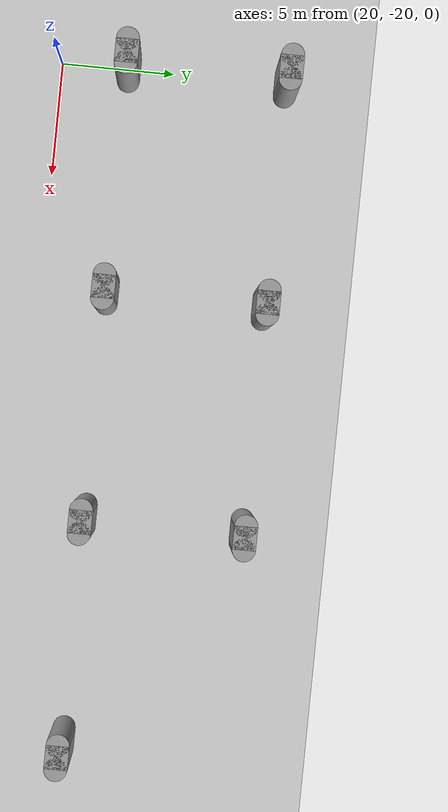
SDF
<sdf version="1.6">
 <world name="default">
  <model name="ground_plane">
   <static>1</static>
   <link name="link">
    <collision name="collision">
     <geometry><plane><normal>0 0 1</normal><size>100 100</size></plane></geometry>
     <surface><friction><ode><mu>100</mu><mu2>50</mu2></ode></friction></surface>
    </collision>
    <visual name="visual">
     <cast_shadows>0</cast_shadows>
     <geometry><plane><normal>0 0 1</normal><size>100 100</size></plane></geometry>
     <material>
      <script><uri>file://media/materials/scripts/gazebo.material</uri><name>Gazebo/Grey</name></script>
     </material>
    </visual>
   </link>
  </model>
  <model name="pillar_clone_2">
   <link name="link_0">
    <inertial>
     <mass>1</mass>
     <inertia>
      <ixx>0.166667</ixx>
      <ixy>0</ixy>
      <ixz>0</ixz>
      <iyy>0.166667</iyy>
      <iyz>0</iyz>
      <izz>0.166667</izz>
     </inertia>
    </inertial>
    <kinematic>1</kinematic>
    <visual name="visual">
     <geometry><box><size>1 1 4</size></box></geometry>
     <material>
      <lighting>1</lighting>
      <script><uri>file://media/materials/scripts/gazebo.material</uri><name>Gazebo/Grey</name></script>
      <shader type="pixel"><normal_map>__default__</normal_map></shader>
      <ambient>0.3 0.3 0.3 1</ambient>
      <diffuse>0.7 0.7 0.7 1</diffuse>
      <specular>0.01 0.01 0.01 1</specular>
      <emissive>0 0 0 1</emissive>
     </material>
    </visual>
    <collision name="collision">
     <geometry><box><size>1 1 4</size></box></geometry>
     <surface>
      <friction>
       <ode><mu>1</mu><mu2>1</mu2><fdir1>0 0 0</fdir1><slip1>0</slip1><slip2>0</slip2></ode>
       <torsional>
        <coefficient>1</coefficient>
        <patch_radius>0</patch_radius>
        <surface_radius>0</surface_radius>
        <use_patch_radius>1</use_patch_radius>
        <ode><slip>0</slip></ode>
       </torsional>
      </friction>
      <bounce><restitution_coefficient>0</restitution_coefficient><threshold>1e+06</threshold></bounce>
      <contact>
       <collide_without_contact>0</collide_without_contact>
       <collide_without_contact_bitmask>1</collide_without_contact_bitmask>
       <collide_bitmask>1</collide_bitmask>
       <ode>
        <soft_cfm>0</soft_cfm>
        <soft_erp>0.2</soft_erp>
        <kp>1e+13</kp>
        <kd>1</kd>
        <max_vel>0.01</max_vel>
        <min_depth>0</min_depth>
       </ode>
       <bullet>
        <split_impulse>1</split_impulse>
        <split_impulse_penetration_threshold>-0.01</split_impulse_penetration_threshold>
        <soft_cfm>0</soft_cfm>
        <soft_erp>0.2</soft_erp>
        <kp>1e+13</kp>
        <kd>1</kd>
       </bullet>
      </contact>
     </surface>
    </collision>
   </link>
   <link name="link_1">
    <inertial>
     <mass>1</mass>
     <inertia><ixx>0.145833</ixx><ixy>0</ixy><ixz>0</ixz><iyy>0.145833</iyy><iyz>0</iyz><izz>0.125</izz></inertia>
    </inertial>
    <pose>-0.5 0 0 0 -0 0</pose>
    <kinematic>1</kinematic>
    <visual name="visual">
     <geometry><cylinder><radius>0.5</radius><length>4</length></cylinder></geometry>
     <material>
      <lighting>1</lighting>
      <script><uri>file://media/materials/scripts/gazebo.material</uri><name>Gazebo/Grey</name></script>
      <shader type="pixel"><normal_map>__default__</normal_map></shader>
      <ambient>0.3 0.3 0.3 1</ambient>
      <diffuse>0.7 0.7 0.7 1</diffuse>
      <specular>0.01 0.01 0.01 1</specular>
      <emissive>0 0 0 1</emissive>
     </material>
    </visual>
    <collision name="collision">
     <geometry><cylinder><radius>0.5</radius><length>4</length></cylinder></geometry>
     <surface>
      <friction>
       <ode><mu>1</mu><mu2>1</mu2><fdir1>0 0 0</fdir1><slip1>0</slip1><slip2>0</slip2></ode>
       <torsional>
        <coefficient>1</coefficient>
        <patch_radius>0</patch_radius>
        <surface_radius>0</surface_radius>
        <use_patch_radius>1</use_patch_radius>
        <ode><slip>0</slip></ode>
       </torsional>
      </friction>
      <bounce><restitution_coefficient>0</restitution_coefficient><threshold>1e+06</threshold></bounce>
      <contact>
       <collide_without_contact>0</collide_without_contact>
       <collide_without_contact_bitmask>1</collide_without_contact_bitmask>
       <collide_bitmask>1</collide_bitmask>
       <ode>
        <soft_cfm>0</soft_cfm>
        <soft_erp>0.2</soft_erp>
        <kp>1e+13</kp>
        <kd>1</kd>
        <max_vel>0.01</max_vel>
        <min_depth>0</min_depth>
       </ode>
       <bullet>
        <split_impulse>1</split_impulse>
        <split_impulse_penetration_threshold>-0.01</split_impulse_penetration_threshold>
        <soft_cfm>0</soft_cfm>
        <soft_erp>0.2</soft_erp>
        <kp>1e+13</kp>
        <kd>1</kd>
       </bullet>
      </contact>
     </surface>
    </collision>
   </link>
   <link name="link_2">
    <inertial>
     <mass>1</mass>
     <inertia><ixx>0.145833</ixx><ixy>0</ixy><ixz>0</ixz><iyy>0.145833</iyy><iyz>0</iyz><izz>0.125</izz></inertia>
    </inertial>
    <pose>0.5 0 0 0 -0 0</pose>
    <kinematic>1</kinematic>
    <visual name="visual">
     <geometry><cylinder><radius>0.5</radius><length>4</length></cylinder></geometry>
     <material>
      <lighting>1</lighting>
      <script><uri>file://media/materials/scripts/gazebo.material</uri><name>Gazebo/Grey</name></script>
      <shader type="pixel"><normal_map>__default__</normal_map></shader>
      <ambient>0.3 0.3 0.3 1</ambient>
      <diffuse>0.7 0.7 0.7 1</diffuse>
      <specular>0.01 0.01 0.01 1</specular>
      <emissive>0 0 0 1</emissive>
     </material>
    </visual>
    <collision name="collision">
     <geometry><cylinder><radius>0.5</radius><length>4</length></cylinder></geometry>
     <surface>
      <friction>
       <ode><mu>1</mu><mu2>1</mu2><fdir1>0 0 0</fdir1><slip1>0</slip1><slip2>0</slip2></ode>
       <torsional>
        <coefficient>1</coefficient>
        <patch_radius>0</patch_radius>
        <surface_radius>0</surface_radius>
        <use_patch_radius>1</use_patch_radius>
        <ode><slip>0</slip></ode>
       </torsional>
      </friction>
      <bounce><restitution_coefficient>0</restitution_coefficient><threshold>1e+06</threshold></bounce>
      <contact>
       <collide_without_contact>0</collide_without_contact>
       <collide_without_contact_bitmask>1</collide_without_contact_bitmask>
       <collide_bitmask>1</collide_bitmask>
       <ode>
        <soft_cfm>0</soft_cfm>
        <soft_erp>0.2</soft_erp>
        <kp>1e+13</kp>
        <kd>1</kd>
        <max_vel>0.01</max_vel>
        <min_depth>0</min_depth>
       </ode>
       <bullet>
        <split_impulse>1</split_impulse>
        <split_impulse_penetration_threshold>-0.01</split_impulse_penetration_threshold>
        <soft_cfm>0</soft_cfm>
        <soft_erp>0.2</soft_erp>
        <kp>1e+13</kp>
        <kd>1</kd>
       </bullet>
      </contact>
     </surface>
    </collision>
   </link>
   <static>1</static>
   <pose>20 -17 2 0 -0 0</pose>
  </model>
  <model name="pillar_clone_3">
   <link name="link_0">
    <inertial>
     <mass>1</mass>
     <inertia>
      <ixx>0.166667</ixx>
      <ixy>0</ixy>
      <ixz>0</ixz>
      <iyy>0.166667</iyy>
      <iyz>0</iyz>
      <izz>0.166667</izz>
     </inertia>
    </inertial>
    <kinematic>1</kinematic>
    <visual name="visual">
     <geometry><box><size>1 1 4</size></box></geometry>
     <material>
      <lighting>1</lighting>
      <script><uri>file://media/materials/scripts/gazebo.material</uri><name>Gazebo/Grey</name></script>
      <shader type="pixel"><normal_map>__default__</normal_map></shader>
      <ambient>0.3 0.3 0.3 1</ambient>
      <diffuse>0.7 0.7 0.7 1</diffuse>
      <specular>0.01 0.01 0.01 1</specular>
      <emissive>0 0 0 1</emissive>
     </material>
    </visual>
    <collision name="collision">
     <geometry><box><size>1 1 4</size></box></geometry>
     <surface>
      <friction>
       <ode><mu>1</mu><mu2>1</mu2><fdir1>0 0 0</fdir1><slip1>0</slip1><slip2>0</slip2></ode>
       <torsional>
        <coefficient>1</coefficient>
        <patch_radius>0</patch_radius>
        <surface_radius>0</surface_radius>
        <use_patch_radius>1</use_patch_radius>
        <ode><slip>0</slip></ode>
       </torsional>
      </friction>
      <bounce><restitution_coefficient>0</restitution_coefficient><threshold>1e+06</threshold></bounce>
      <contact>
       <collide_without_contact>0</collide_without_contact>
       <collide_without_contact_bitmask>1</collide_without_contact_bitmask>
       <collide_bitmask>1</collide_bitmask>
       <ode>
        <soft_cfm>0</soft_cfm>
        <soft_erp>0.2</soft_erp>
        <kp>1e+13</kp>
        <kd>1</kd>
        <max_vel>0.01</max_vel>
        <min_depth>0</min_depth>
       </ode>
       <bullet>
        <split_impulse>1</split_impulse>
        <split_impulse_penetration_threshold>-0.01</split_impulse_penetration_threshold>
        <soft_cfm>0</soft_cfm>
        <soft_erp>0.2</soft_erp>
        <kp>1e+13</kp>
        <kd>1</kd>
       </bullet>
      </contact>
     </surface>
    </collision>
   </link>
   <link name="link_1">
    <inertial>
     <mass>1</mass>
     <inertia><ixx>0.145833</ixx><ixy>0</ixy><ixz>0</ixz><iyy>0.145833</iyy><iyz>0</iyz><izz>0.125</izz></inertia>
    </inertial>
    <pose>-0.5 0 0 0 -0 0</pose>
    <kinematic>1</kinematic>
    <visual name="visual">
     <geometry><cylinder><radius>0.5</radius><length>4</length></cylinder></geometry>
     <material>
      <lighting>1</lighting>
      <script><uri>file://media/materials/scripts/gazebo.material</uri><name>Gazebo/Grey</name></script>
      <shader type="pixel"><normal_map>__default__</normal_map></shader>
      <ambient>0.3 0.3 0.3 1</ambient>
      <diffuse>0.7 0.7 0.7 1</diffuse>
      <specular>0.01 0.01 0.01 1</specular>
      <emissive>0 0 0 1</emissive>
     </material>
    </visual>
    <collision name="collision">
     <geometry><cylinder><radius>0.5</radius><length>4</length></cylinder></geometry>
     <surface>
      <friction>
       <ode><mu>1</mu><mu2>1</mu2><fdir1>0 0 0</fdir1><slip1>0</slip1><slip2>0</slip2></ode>
       <torsional>
        <coefficient>1</coefficient>
        <patch_radius>0</patch_radius>
        <surface_radius>0</surface_radius>
        <use_patch_radius>1</use_patch_radius>
        <ode><slip>0</slip></ode>
       </torsional>
      </friction>
      <bounce><restitution_coefficient>0</restitution_coefficient><threshold>1e+06</threshold></bounce>
      <contact>
       <collide_without_contact>0</collide_without_contact>
       <collide_without_contact_bitmask>1</collide_without_contact_bitmask>
       <collide_bitmask>1</collide_bitmask>
       <ode>
        <soft_cfm>0</soft_cfm>
        <soft_erp>0.2</soft_erp>
        <kp>1e+13</kp>
        <kd>1</kd>
        <max_vel>0.01</max_vel>
        <min_depth>0</min_depth>
       </ode>
       <bullet>
        <split_impulse>1</split_impulse>
        <split_impulse_penetration_threshold>-0.01</split_impulse_penetration_threshold>
        <soft_cfm>0</soft_cfm>
        <soft_erp>0.2</soft_erp>
        <kp>1e+13</kp>
        <kd>1</kd>
       </bullet>
      </contact>
     </surface>
    </collision>
   </link>
   <link name="link_2">
    <inertial>
     <mass>1</mass>
     <inertia><ixx>0.145833</ixx><ixy>0</ixy><ixz>0</ixz><iyy>0.145833</iyy><iyz>0</iyz><izz>0.125</izz></inertia>
    </inertial>
    <pose>0.5 0 0 0 -0 0</pose>
    <kinematic>1</kinematic>
    <visual name="visual">
     <geometry><cylinder><radius>0.5</radius><length>4</length></cylinder></geometry>
     <material>
      <lighting>1</lighting>
      <script><uri>file://media/materials/scripts/gazebo.material</uri><name>Gazebo/Grey</name></script>
      <shader type="pixel"><normal_map>__default__</normal_map></shader>
      <ambient>0.3 0.3 0.3 1</ambient>
      <diffuse>0.7 0.7 0.7 1</diffuse>
      <specular>0.01 0.01 0.01 1</specular>
      <emissive>0 0 0 1</emissive>
     </material>
    </visual>
    <collision name="collision">
     <geometry><cylinder><radius>0.5</radius><length>4</length></cylinder></geometry>
     <surface>
      <friction>
       <ode><mu>1</mu><mu2>1</mu2><fdir1>0 0 0</fdir1><slip1>0</slip1><slip2>0</slip2></ode>
       <torsional>
        <coefficient>1</coefficient>
        <patch_radius>0</patch_radius>
        <surface_radius>0</surface_radius>
        <use_patch_radius>1</use_patch_radius>
        <ode><slip>0</slip></ode>
       </torsional>
      </friction>
      <bounce><restitution_coefficient>0</restitution_coefficient><threshold>1e+06</threshold></bounce>
      <contact>
       <collide_without_contact>0</collide_without_contact>
       <collide_without_contact_bitmask>1</collide_without_contact_bitmask>
       <collide_bitmask>1</collide_bitmask>
       <ode>
        <soft_cfm>0</soft_cfm>
        <soft_erp>0.2</soft_erp>
        <kp>1e+13</kp>
        <kd>1</kd>
        <max_vel>0.01</max_vel>
        <min_depth>0</min_depth>
       </ode>
       <bullet>
        <split_impulse>1</split_impulse>
        <split_impulse_penetration_threshold>-0.01</split_impulse_penetration_threshold>
        <soft_cfm>0</soft_cfm>
        <soft_erp>0.2</soft_erp>
        <kp>1e+13</kp>
        <kd>1</kd>
       </bullet>
      </contact>
     </surface>
    </collision>
   </link>
   <static>1</static>
   <pose>30 -17 2 0 -0 0</pose>
  </model>
  <model name="pillar_clone_4">
   <link name="link_0">
    <inertial>
     <mass>1</mass>
     <inertia>
      <ixx>0.166667</ixx>
      <ixy>0</ixy>
      <ixz>0</ixz>
      <iyy>0.166667</iyy>
      <iyz>0</iyz>
      <izz>0.166667</izz>
     </inertia>
    </inertial>
    <kinematic>1</kinematic>
    <visual name="visual">
     <geometry><box><size>1 1 4</size></box></geometry>
     <material>
      <lighting>1</lighting>
      <script><uri>file://media/materials/scripts/gazebo.material</uri><name>Gazebo/Grey</name></script>
      <shader type="pixel"><normal_map>__default__</normal_map></shader>
      <ambient>0.3 0.3 0.3 1</ambient>
      <diffuse>0.7 0.7 0.7 1</diffuse>
      <specular>0.01 0.01 0.01 1</specular>
      <emissive>0 0 0 1</emissive>
     </material>
    </visual>
    <collision name="collision">
     <geometry><box><size>1 1 4</size></box></geometry>
     <surface>
      <friction>
       <ode><mu>1</mu><mu2>1</mu2><fdir1>0 0 0</fdir1><slip1>0</slip1><slip2>0</slip2></ode>
       <torsional>
        <coefficient>1</coefficient>
        <patch_radius>0</patch_radius>
        <surface_radius>0</surface_radius>
        <use_patch_radius>1</use_patch_radius>
        <ode><slip>0</slip></ode>
       </torsional>
      </friction>
      <bounce><restitution_coefficient>0</restitution_coefficient><threshold>1e+06</threshold></bounce>
      <contact>
       <collide_without_contact>0</collide_without_contact>
       <collide_without_contact_bitmask>1</collide_without_contact_bitmask>
       <collide_bitmask>1</collide_bitmask>
       <ode>
        <soft_cfm>0</soft_cfm>
        <soft_erp>0.2</soft_erp>
        <kp>1e+13</kp>
        <kd>1</kd>
        <max_vel>0.01</max_vel>
        <min_depth>0</min_depth>
       </ode>
       <bullet>
        <split_impulse>1</split_impulse>
        <split_impulse_penetration_threshold>-0.01</split_impulse_penetration_threshold>
        <soft_cfm>0</soft_cfm>
        <soft_erp>0.2</soft_erp>
        <kp>1e+13</kp>
        <kd>1</kd>
       </bullet>
      </contact>
     </surface>
    </collision>
   </link>
   <link name="link_1">
    <inertial>
     <mass>1</mass>
     <inertia><ixx>0.145833</ixx><ixy>0</ixy><ixz>0</ixz><iyy>0.145833</iyy><iyz>0</iyz><izz>0.125</izz></inertia>
    </inertial>
    <pose>-0.5 0 0 0 -0 0</pose>
    <kinematic>1</kinematic>
    <visual name="visual">
     <geometry><cylinder><radius>0.5</radius><length>4</length></cylinder></geometry>
     <material>
      <lighting>1</lighting>
      <script><uri>file://media/materials/scripts/gazebo.material</uri><name>Gazebo/Grey</name></script>
      <shader type="pixel"><normal_map>__default__</normal_map></shader>
      <ambient>0.3 0.3 0.3 1</ambient>
      <diffuse>0.7 0.7 0.7 1</diffuse>
      <specular>0.01 0.01 0.01 1</specular>
      <emissive>0 0 0 1</emissive>
     </material>
    </visual>
    <collision name="collision">
     <geometry><cylinder><radius>0.5</radius><length>4</length></cylinder></geometry>
     <surface>
      <friction>
       <ode><mu>1</mu><mu2>1</mu2><fdir1>0 0 0</fdir1><slip1>0</slip1><slip2>0</slip2></ode>
       <torsional>
        <coefficient>1</coefficient>
        <patch_radius>0</patch_radius>
        <surface_radius>0</surface_radius>
        <use_patch_radius>1</use_patch_radius>
        <ode><slip>0</slip></ode>
       </torsional>
      </friction>
      <bounce><restitution_coefficient>0</restitution_coefficient><threshold>1e+06</threshold></bounce>
      <contact>
       <collide_without_contact>0</collide_without_contact>
       <collide_without_contact_bitmask>1</collide_without_contact_bitmask>
       <collide_bitmask>1</collide_bitmask>
       <ode>
        <soft_cfm>0</soft_cfm>
        <soft_erp>0.2</soft_erp>
        <kp>1e+13</kp>
        <kd>1</kd>
        <max_vel>0.01</max_vel>
        <min_depth>0</min_depth>
       </ode>
       <bullet>
        <split_impulse>1</split_impulse>
        <split_impulse_penetration_threshold>-0.01</split_impulse_penetration_threshold>
        <soft_cfm>0</soft_cfm>
        <soft_erp>0.2</soft_erp>
        <kp>1e+13</kp>
        <kd>1</kd>
       </bullet>
      </contact>
     </surface>
    </collision>
   </link>
   <link name="link_2">
    <inertial>
     <mass>1</mass>
     <inertia><ixx>0.145833</ixx><ixy>0</ixy><ixz>0</ixz><iyy>0.145833</iyy><iyz>0</iyz><izz>0.125</izz></inertia>
    </inertial>
    <pose>0.5 0 0 0 -0 0</pose>
    <kinematic>1</kinematic>
    <visual name="visual">
     <geometry><cylinder><radius>0.5</radius><length>4</length></cylinder></geometry>
     <material>
      <lighting>1</lighting>
      <script><uri>file://media/materials/scripts/gazebo.material</uri><name>Gazebo/Grey</name></script>
      <shader type="pixel"><normal_map>__default__</normal_map></shader>
      <ambient>0.3 0.3 0.3 1</ambient>
      <diffuse>0.7 0.7 0.7 1</diffuse>
      <specular>0.01 0.01 0.01 1</specular>
      <emissive>0 0 0 1</emissive>
     </material>
    </visual>
    <collision name="collision">
     <geometry><cylinder><radius>0.5</radius><length>4</length></cylinder></geometry>
     <surface>
      <friction>
       <ode><mu>1</mu><mu2>1</mu2><fdir1>0 0 0</fdir1><slip1>0</slip1><slip2>0</slip2></ode>
       <torsional>
        <coefficient>1</coefficient>
        <patch_radius>0</patch_radius>
        <surface_radius>0</surface_radius>
        <use_patch_radius>1</use_patch_radius>
        <ode><slip>0</slip></ode>
       </torsional>
      </friction>
      <bounce><restitution_coefficient>0</restitution_coefficient><threshold>1e+06</threshold></bounce>
      <contact>
       <collide_without_contact>0</collide_without_contact>
       <collide_without_contact_bitmask>1</collide_without_contact_bitmask>
       <collide_bitmask>1</collide_bitmask>
       <ode>
        <soft_cfm>0</soft_cfm>
        <soft_erp>0.2</soft_erp>
        <kp>1e+13</kp>
        <kd>1</kd>
        <max_vel>0.01</max_vel>
        <min_depth>0</min_depth>
       </ode>
       <bullet>
        <split_impulse>1</split_impulse>
        <split_impulse_penetration_threshold>-0.01</split_impulse_penetration_threshold>
        <soft_cfm>0</soft_cfm>
        <soft_erp>0.2</soft_erp>
        <kp>1e+13</kp>
        <kd>1</kd>
       </bullet>
      </contact>
     </surface>
    </collision>
   </link>
   <static>1</static>
   <pose>40 -17 2 0 -0 0</pose>
  </model>
  <model name="pillar_clone_5">
   <link name="link_0">
    <inertial>
     <mass>1</mass>
     <inertia>
      <ixx>0.166667</ixx>
      <ixy>0</ixy>
      <ixz>0</ixz>
      <iyy>0.166667</iyy>
      <iyz>0</iyz>
      <izz>0.166667</izz>
     </inertia>
    </inertial>
    <kinematic>1</kinematic>
    <visual name="visual">
     <geometry><box><size>1 1 4</size></box></geometry>
     <material>
      <lighting>1</lighting>
      <script><uri>file://media/materials/scripts/gazebo.material</uri><name>Gazebo/Grey</name></script>
      <shader type="pixel"><normal_map>__default__</normal_map></shader>
      <ambient>0.3 0.3 0.3 1</ambient>
      <diffuse>0.7 0.7 0.7 1</diffuse>
      <specular>0.01 0.01 0.01 1</specular>
      <emissive>0 0 0 1</emissive>
     </material>
    </visual>
    <collision name="collision">
     <geometry><box><size>1 1 4</size></box></geometry>
     <surface>
      <friction>
       <ode><mu>1</mu><mu2>1</mu2><fdir1>0 0 0</fdir1><slip1>0</slip1><slip2>0</slip2></ode>
       <torsional>
        <coefficient>1</coefficient>
        <patch_radius>0</patch_radius>
        <surface_radius>0</surface_radius>
        <use_patch_radius>1</use_patch_radius>
        <ode><slip>0</slip></ode>
       </torsional>
      </friction>
      <bounce><restitution_coefficient>0</restitution_coefficient><threshold>1e+06</threshold></bounce>
      <contact>
       <collide_without_contact>0</collide_without_contact>
       <collide_without_contact_bitmask>1</collide_without_contact_bitmask>
       <collide_bitmask>1</collide_bitmask>
       <ode>
        <soft_cfm>0</soft_cfm>
        <soft_erp>0.2</soft_erp>
        <kp>1e+13</kp>
        <kd>1</kd>
        <max_vel>0.01</max_vel>
        <min_depth>0</min_depth>
       </ode>
       <bullet>
        <split_impulse>1</split_impulse>
        <split_impulse_penetration_threshold>-0.01</split_impulse_penetration_threshold>
        <soft_cfm>0</soft_cfm>
        <soft_erp>0.2</soft_erp>
        <kp>1e+13</kp>
        <kd>1</kd>
       </bullet>
      </contact>
     </surface>
    </collision>
   </link>
   <link name="link_1">
    <inertial>
     <mass>1</mass>
     <inertia><ixx>0.145833</ixx><ixy>0</ixy><ixz>0</ixz><iyy>0.145833</iyy><iyz>0</iyz><izz>0.125</izz></inertia>
    </inertial>
    <pose>-0.5 0 0 0 -0 0</pose>
    <kinematic>1</kinematic>
    <visual name="visual">
     <geometry><cylinder><radius>0.5</radius><length>4</length></cylinder></geometry>
     <material>
      <lighting>1</lighting>
      <script><uri>file://media/materials/scripts/gazebo.material</uri><name>Gazebo/Grey</name></script>
      <shader type="pixel"><normal_map>__default__</normal_map></shader>
      <ambient>0.3 0.3 0.3 1</ambient>
      <diffuse>0.7 0.7 0.7 1</diffuse>
      <specular>0.01 0.01 0.01 1</specular>
      <emissive>0 0 0 1</emissive>
     </material>
    </visual>
    <collision name="collision">
     <geometry><cylinder><radius>0.5</radius><length>4</length></cylinder></geometry>
     <surface>
      <friction>
       <ode><mu>1</mu><mu2>1</mu2><fdir1>0 0 0</fdir1><slip1>0</slip1><slip2>0</slip2></ode>
       <torsional>
        <coefficient>1</coefficient>
        <patch_radius>0</patch_radius>
        <surface_radius>0</surface_radius>
        <use_patch_radius>1</use_patch_radius>
        <ode><slip>0</slip></ode>
       </torsional>
      </friction>
      <bounce><restitution_coefficient>0</restitution_coefficient><threshold>1e+06</threshold></bounce>
      <contact>
       <collide_without_contact>0</collide_without_contact>
       <collide_without_contact_bitmask>1</collide_without_contact_bitmask>
       <collide_bitmask>1</collide_bitmask>
       <ode>
        <soft_cfm>0</soft_cfm>
        <soft_erp>0.2</soft_erp>
        <kp>1e+13</kp>
        <kd>1</kd>
        <max_vel>0.01</max_vel>
        <min_depth>0</min_depth>
       </ode>
       <bullet>
        <split_impulse>1</split_impulse>
        <split_impulse_penetration_threshold>-0.01</split_impulse_penetration_threshold>
        <soft_cfm>0</soft_cfm>
        <soft_erp>0.2</soft_erp>
        <kp>1e+13</kp>
        <kd>1</kd>
       </bullet>
      </contact>
     </surface>
    </collision>
   </link>
   <link name="link_2">
    <inertial>
     <mass>1</mass>
     <inertia><ixx>0.145833</ixx><ixy>0</ixy><ixz>0</ixz><iyy>0.145833</iyy><iyz>0</iyz><izz>0.125</izz></inertia>
    </inertial>
    <pose>0.5 0 0 0 -0 0</pose>
    <kinematic>1</kinematic>
    <visual name="visual">
     <geometry><cylinder><radius>0.5</radius><length>4</length></cylinder></geometry>
     <material>
      <lighting>1</lighting>
      <script><uri>file://media/materials/scripts/gazebo.material</uri><name>Gazebo/Grey</name></script>
      <shader type="pixel"><normal_map>__default__</normal_map></shader>
      <ambient>0.3 0.3 0.3 1</ambient>
      <diffuse>0.7 0.7 0.7 1</diffuse>
      <specular>0.01 0.01 0.01 1</specular>
      <emissive>0 0 0 1</emissive>
     </material>
    </visual>
    <collision name="collision">
     <geometry><cylinder><radius>0.5</radius><length>4</length></cylinder></geometry>
     <surface>
      <friction>
       <ode><mu>1</mu><mu2>1</mu2><fdir1>0 0 0</fdir1><slip1>0</slip1><slip2>0</slip2></ode>
       <torsional>
        <coefficient>1</coefficient>
        <patch_radius>0</patch_radius>
        <surface_radius>0</surface_radius>
        <use_patch_radius>1</use_patch_radius>
        <ode><slip>0</slip></ode>
       </torsional>
      </friction>
      <bounce><restitution_coefficient>0</restitution_coefficient><threshold>1e+06</threshold></bounce>
      <contact>
       <collide_without_contact>0</collide_without_contact>
       <collide_without_contact_bitmask>1</collide_without_contact_bitmask>
       <collide_bitmask>1</collide_bitmask>
       <ode>
        <soft_cfm>0</soft_cfm>
        <soft_erp>0.2</soft_erp>
        <kp>1e+13</kp>
        <kd>1</kd>
        <max_vel>0.01</max_vel>
        <min_depth>0</min_depth>
       </ode>
       <bullet>
        <split_impulse>1</split_impulse>
        <split_impulse_penetration_threshold>-0.01</split_impulse_penetration_threshold>
        <soft_cfm>0</soft_cfm>
        <soft_erp>0.2</soft_erp>
        <kp>1e+13</kp>
        <kd>1</kd>
       </bullet>
      </contact>
     </surface>
    </collision>
   </link>
   <static>1</static>
   <pose>50 -17 2 0 -0 0</pose>
  </model>
  <model name="pillar_clone_6_clone_11">
   <link name="link_0">
    <inertial>
     <mass>1</mass>
     <inertia>
      <ixx>0.166667</ixx>
      <ixy>0</ixy>
      <ixz>0</ixz>
      <iyy>0.166667</iyy>
      <iyz>0</iyz>
      <izz>0.166667</izz>
     </inertia>
    </inertial>
    <kinematic>1</kinematic>
    <visual name="visual">
     <geometry><box><size>1 1 4</size></box></geometry>
     <material>
      <lighting>1</lighting>
      <script><uri>file://media/materials/scripts/gazebo.material</uri><name>Gazebo/Grey</name></script>
      <shader type="pixel"><normal_map>__default__</normal_map></shader>
      <ambient>0.3 0.3 0.3 1</ambient>
      <diffuse>0.7 0.7 0.7 1</diffuse>
      <specular>0.01 0.01 0.01 1</specular>
      <emissive>0 0 0 1</emissive>
     </material>
    </visual>
    <collision name="collision">
     <geometry><box><size>1 1 4</size></box></geometry>
     <surface>
      <friction>
       <ode><mu>1</mu><mu2>1</mu2><fdir1>0 0 0</fdir1><slip1>0</slip1><slip2>0</slip2></ode>
       <torsional>
        <coefficient>1</coefficient>
        <patch_radius>0</patch_radius>
        <surface_radius>0</surface_radius>
        <use_patch_radius>1</use_patch_radius>
        <ode><slip>0</slip></ode>
       </torsional>
      </friction>
      <bounce><restitution_coefficient>0</restitution_coefficient><threshold>1e+06</threshold></bounce>
      <contact>
       <collide_without_contact>0</collide_without_contact>
       <collide_without_contact_bitmask>1</collide_without_contact_bitmask>
       <collide_bitmask>1</collide_bitmask>
       <ode>
        <soft_cfm>0</soft_cfm>
        <soft_erp>0.2</soft_erp>
        <kp>1e+13</kp>
        <kd>1</kd>
        <max_vel>0.01</max_vel>
        <min_depth>0</min_depth>
       </ode>
       <bullet>
        <split_impulse>1</split_impulse>
        <split_impulse_penetration_threshold>-0.01</split_impulse_penetration_threshold>
        <soft_cfm>0</soft_cfm>
        <soft_erp>0.2</soft_erp>
        <kp>1e+13</kp>
        <kd>1</kd>
       </bullet>
      </contact>
     </surface>
    </collision>
   </link>
   <link name="link_1">
    <inertial>
     <mass>1</mass>
     <inertia><ixx>0.145833</ixx><ixy>0</ixy><ixz>0</ixz><iyy>0.145833</iyy><iyz>0</iyz><izz>0.125</izz></inertia>
    </inertial>
    <pose>-0.5 0 0 0 -0 0</pose>
    <kinematic>1</kinematic>
    <visual name="visual">
     <geometry><cylinder><radius>0.5</radius><length>4</length></cylinder></geometry>
     <material>
      <lighting>1</lighting>
      <script><uri>file://media/materials/scripts/gazebo.material</uri><name>Gazebo/Grey</name></script>
      <shader type="pixel"><normal_map>__default__</normal_map></shader>
      <ambient>0.3 0.3 0.3 1</ambient>
      <diffuse>0.7 0.7 0.7 1</diffuse>
      <specular>0.01 0.01 0.01 1</specular>
      <emissive>0 0 0 1</emissive>
     </material>
    </visual>
    <collision name="collision">
     <geometry><cylinder><radius>0.5</radius><length>4</length></cylinder></geometry>
     <surface>
      <friction>
       <ode><mu>1</mu><mu2>1</mu2><fdir1>0 0 0</fdir1><slip1>0</slip1><slip2>0</slip2></ode>
       <torsional>
        <coefficient>1</coefficient>
        <patch_radius>0</patch_radius>
        <surface_radius>0</surface_radius>
        <use_patch_radius>1</use_patch_radius>
        <ode><slip>0</slip></ode>
       </torsional>
      </friction>
      <bounce><restitution_coefficient>0</restitution_coefficient><threshold>1e+06</threshold></bounce>
      <contact>
       <collide_without_contact>0</collide_without_contact>
       <collide_without_contact_bitmask>1</collide_without_contact_bitmask>
       <collide_bitmask>1</collide_bitmask>
       <ode>
        <soft_cfm>0</soft_cfm>
        <soft_erp>0.2</soft_erp>
        <kp>1e+13</kp>
        <kd>1</kd>
        <max_vel>0.01</max_vel>
        <min_depth>0</min_depth>
       </ode>
       <bullet>
        <split_impulse>1</split_impulse>
        <split_impulse_penetration_threshold>-0.01</split_impulse_penetration_threshold>
        <soft_cfm>0</soft_cfm>
        <soft_erp>0.2</soft_erp>
        <kp>1e+13</kp>
        <kd>1</kd>
       </bullet>
      </contact>
     </surface>
    </collision>
   </link>
   <link name="link_2">
    <inertial>
     <mass>1</mass>
     <inertia><ixx>0.145833</ixx><ixy>0</ixy><ixz>0</ixz><iyy>0.145833</iyy><iyz>0</iyz><izz>0.125</izz></inertia>
    </inertial>
    <pose>0.5 0 0 0 -0 0</pose>
    <kinematic>1</kinematic>
    <visual name="visual">
     <geometry><cylinder><radius>0.5</radius><length>4</length></cylinder></geometry>
     <material>
      <lighting>1</lighting>
      <script><uri>file://media/materials/scripts/gazebo.material</uri><name>Gazebo/Grey</name></script>
      <shader type="pixel"><normal_map>__default__</normal_map></shader>
      <ambient>0.3 0.3 0.3 1</ambient>
      <diffuse>0.7 0.7 0.7 1</diffuse>
      <specular>0.01 0.01 0.01 1</specular>
      <emissive>0 0 0 1</emissive>
     </material>
    </visual>
    <collision name="collision">
     <geometry><cylinder><radius>0.5</radius><length>4</length></cylinder></geometry>
     <surface>
      <friction>
       <ode><mu>1</mu><mu2>1</mu2><fdir1>0 0 0</fdir1><slip1>0</slip1><slip2>0</slip2></ode>
       <torsional>
        <coefficient>1</coefficient>
        <patch_radius>0</patch_radius>
        <surface_radius>0</surface_radius>
        <use_patch_radius>1</use_patch_radius>
        <ode><slip>0</slip></ode>
       </torsional>
      </friction>
      <bounce><restitution_coefficient>0</restitution_coefficient><threshold>1e+06</threshold></bounce>
      <contact>
       <collide_without_contact>0</collide_without_contact>
       <collide_without_contact_bitmask>1</collide_without_contact_bitmask>
       <collide_bitmask>1</collide_bitmask>
       <ode>
        <soft_cfm>0</soft_cfm>
        <soft_erp>0.2</soft_erp>
        <kp>1e+13</kp>
        <kd>1</kd>
        <max_vel>0.01</max_vel>
        <min_depth>0</min_depth>
       </ode>
       <bullet>
        <split_impulse>1</split_impulse>
        <split_impulse_penetration_threshold>-0.01</split_impulse_penetration_threshold>
        <soft_cfm>0</soft_cfm>
        <soft_erp>0.2</soft_erp>
        <kp>1e+13</kp>
        <kd>1</kd>
       </bullet>
      </contact>
     </surface>
    </collision>
   </link>
   <static>1</static>
   <pose>20 -10 2 0 -0 0</pose>
  </model>
  <model name="pillar_clone_6_clone_12">
   <link name="link_0">
    <inertial>
     <mass>1</mass>
     <inertia>
      <ixx>0.166667</ixx>
      <ixy>0</ixy>
      <ixz>0</ixz>
      <iyy>0.166667</iyy>
      <iyz>0</iyz>
      <izz>0.166667</izz>
     </inertia>
    </inertial>
    <kinematic>1</kinematic>
    <visual name="visual">
     <geometry><box><size>1 1 4</size></box></geometry>
     <material>
      <lighting>1</lighting>
      <script><uri>file://media/materials/scripts/gazebo.material</uri><name>Gazebo/Grey</name></script>
      <shader type="pixel"><normal_map>__default__</normal_map></shader>
      <ambient>0.3 0.3 0.3 1</ambient>
      <diffuse>0.7 0.7 0.7 1</diffuse>
      <specular>0.01 0.01 0.01 1</specular>
      <emissive>0 0 0 1</emissive>
     </material>
    </visual>
    <collision name="collision">
     <geometry><box><size>1 1 4</size></box></geometry>
     <surface>
      <friction>
       <ode><mu>1</mu><mu2>1</mu2><fdir1>0 0 0</fdir1><slip1>0</slip1><slip2>0</slip2></ode>
       <torsional>
        <coefficient>1</coefficient>
        <patch_radius>0</patch_radius>
        <surface_radius>0</surface_radius>
        <use_patch_radius>1</use_patch_radius>
        <ode><slip>0</slip></ode>
       </torsional>
      </friction>
      <bounce><restitution_coefficient>0</restitution_coefficient><threshold>1e+06</threshold></bounce>
      <contact>
       <collide_without_contact>0</collide_without_contact>
       <collide_without_contact_bitmask>1</collide_without_contact_bitmask>
       <collide_bitmask>1</collide_bitmask>
       <ode>
        <soft_cfm>0</soft_cfm>
        <soft_erp>0.2</soft_erp>
        <kp>1e+13</kp>
        <kd>1</kd>
        <max_vel>0.01</max_vel>
        <min_depth>0</min_depth>
       </ode>
       <bullet>
        <split_impulse>1</split_impulse>
        <split_impulse_penetration_threshold>-0.01</split_impulse_penetration_threshold>
        <soft_cfm>0</soft_cfm>
        <soft_erp>0.2</soft_erp>
        <kp>1e+13</kp>
        <kd>1</kd>
       </bullet>
      </contact>
     </surface>
    </collision>
   </link>
   <link name="link_1">
    <inertial>
     <mass>1</mass>
     <inertia><ixx>0.145833</ixx><ixy>0</ixy><ixz>0</ixz><iyy>0.145833</iyy><iyz>0</iyz><izz>0.125</izz></inertia>
    </inertial>
    <pose>-0.5 0 0 0 -0 0</pose>
    <kinematic>1</kinematic>
    <visual name="visual">
     <geometry><cylinder><radius>0.5</radius><length>4</length></cylinder></geometry>
     <material>
      <lighting>1</lighting>
      <script><uri>file://media/materials/scripts/gazebo.material</uri><name>Gazebo/Grey</name></script>
      <shader type="pixel"><normal_map>__default__</normal_map></shader>
      <ambient>0.3 0.3 0.3 1</ambient>
      <diffuse>0.7 0.7 0.7 1</diffuse>
      <specular>0.01 0.01 0.01 1</specular>
      <emissive>0 0 0 1</emissive>
     </material>
    </visual>
    <collision name="collision">
     <geometry><cylinder><radius>0.5</radius><length>4</length></cylinder></geometry>
     <surface>
      <friction>
       <ode><mu>1</mu><mu2>1</mu2><fdir1>0 0 0</fdir1><slip1>0</slip1><slip2>0</slip2></ode>
       <torsional>
        <coefficient>1</coefficient>
        <patch_radius>0</patch_radius>
        <surface_radius>0</surface_radius>
        <use_patch_radius>1</use_patch_radius>
        <ode><slip>0</slip></ode>
       </torsional>
      </friction>
      <bounce><restitution_coefficient>0</restitution_coefficient><threshold>1e+06</threshold></bounce>
      <contact>
       <collide_without_contact>0</collide_without_contact>
       <collide_without_contact_bitmask>1</collide_without_contact_bitmask>
       <collide_bitmask>1</collide_bitmask>
       <ode>
        <soft_cfm>0</soft_cfm>
        <soft_erp>0.2</soft_erp>
        <kp>1e+13</kp>
        <kd>1</kd>
        <max_vel>0.01</max_vel>
        <min_depth>0</min_depth>
       </ode>
       <bullet>
        <split_impulse>1</split_impulse>
        <split_impulse_penetration_threshold>-0.01</split_impulse_penetration_threshold>
        <soft_cfm>0</soft_cfm>
        <soft_erp>0.2</soft_erp>
        <kp>1e+13</kp>
        <kd>1</kd>
       </bullet>
      </contact>
     </surface>
    </collision>
   </link>
   <link name="link_2">
    <inertial>
     <mass>1</mass>
     <inertia><ixx>0.145833</ixx><ixy>0</ixy><ixz>0</ixz><iyy>0.145833</iyy><iyz>0</iyz><izz>0.125</izz></inertia>
    </inertial>
    <pose>0.5 0 0 0 -0 0</pose>
    <kinematic>1</kinematic>
    <visual name="visual">
     <geometry><cylinder><radius>0.5</radius><length>4</length></cylinder></geometry>
     <material>
      <lighting>1</lighting>
      <script><uri>file://media/materials/scripts/gazebo.material</uri><name>Gazebo/Grey</name></script>
      <shader type="pixel"><normal_map>__default__</normal_map></shader>
      <ambient>0.3 0.3 0.3 1</ambient>
      <diffuse>0.7 0.7 0.7 1</diffuse>
      <specular>0.01 0.01 0.01 1</specular>
      <emissive>0 0 0 1</emissive>
     </material>
    </visual>
    <collision name="collision">
     <geometry><cylinder><radius>0.5</radius><length>4</length></cylinder></geometry>
     <surface>
      <friction>
       <ode><mu>1</mu><mu2>1</mu2><fdir1>0 0 0</fdir1><slip1>0</slip1><slip2>0</slip2></ode>
       <torsional>
        <coefficient>1</coefficient>
        <patch_radius>0</patch_radius>
        <surface_radius>0</surface_radius>
        <use_patch_radius>1</use_patch_radius>
        <ode><slip>0</slip></ode>
       </torsional>
      </friction>
      <bounce><restitution_coefficient>0</restitution_coefficient><threshold>1e+06</threshold></bounce>
      <contact>
       <collide_without_contact>0</collide_without_contact>
       <collide_without_contact_bitmask>1</collide_without_contact_bitmask>
       <collide_bitmask>1</collide_bitmask>
       <ode>
        <soft_cfm>0</soft_cfm>
        <soft_erp>0.2</soft_erp>
        <kp>1e+13</kp>
        <kd>1</kd>
        <max_vel>0.01</max_vel>
        <min_depth>0</min_depth>
       </ode>
       <bullet>
        <split_impulse>1</split_impulse>
        <split_impulse_penetration_threshold>-0.01</split_impulse_penetration_threshold>
        <soft_cfm>0</soft_cfm>
        <soft_erp>0.2</soft_erp>
        <kp>1e+13</kp>
        <kd>1</kd>
       </bullet>
      </contact>
     </surface>
    </collision>
   </link>
   <static>1</static>
   <pose>30 -10 2 0 -0 0</pose>
  </model>
  <model name="pillar_clone_6_clone_13">
   <link name="link_0">
    <inertial>
     <mass>1</mass>
     <inertia>
      <ixx>0.166667</ixx>
      <ixy>0</ixy>
      <ixz>0</ixz>
      <iyy>0.166667</iyy>
      <iyz>0</iyz>
      <izz>0.166667</izz>
     </inertia>
    </inertial>
    <kinematic>1</kinematic>
    <visual name="visual">
     <geometry><box><size>1 1 4</size></box></geometry>
     <material>
      <lighting>1</lighting>
      <script><uri>file://media/materials/scripts/gazebo.material</uri><name>Gazebo/Grey</name></script>
      <shader type="pixel"><normal_map>__default__</normal_map></shader>
      <ambient>0.3 0.3 0.3 1</ambient>
      <diffuse>0.7 0.7 0.7 1</diffuse>
      <specular>0.01 0.01 0.01 1</specular>
      <emissive>0 0 0 1</emissive>
     </material>
    </visual>
    <collision name="collision">
     <geometry><box><size>1 1 4</size></box></geometry>
     <surface>
      <friction>
       <ode><mu>1</mu><mu2>1</mu2><fdir1>0 0 0</fdir1><slip1>0</slip1><slip2>0</slip2></ode>
       <torsional>
        <coefficient>1</coefficient>
        <patch_radius>0</patch_radius>
        <surface_radius>0</surface_radius>
        <use_patch_radius>1</use_patch_radius>
        <ode><slip>0</slip></ode>
       </torsional>
      </friction>
      <bounce><restitution_coefficient>0</restitution_coefficient><threshold>1e+06</threshold></bounce>
      <contact>
       <collide_without_contact>0</collide_without_contact>
       <collide_without_contact_bitmask>1</collide_without_contact_bitmask>
       <collide_bitmask>1</collide_bitmask>
       <ode>
        <soft_cfm>0</soft_cfm>
        <soft_erp>0.2</soft_erp>
        <kp>1e+13</kp>
        <kd>1</kd>
        <max_vel>0.01</max_vel>
        <min_depth>0</min_depth>
       </ode>
       <bullet>
        <split_impulse>1</split_impulse>
        <split_impulse_penetration_threshold>-0.01</split_impulse_penetration_threshold>
        <soft_cfm>0</soft_cfm>
        <soft_erp>0.2</soft_erp>
        <kp>1e+13</kp>
        <kd>1</kd>
       </bullet>
      </contact>
     </surface>
    </collision>
   </link>
   <link name="link_1">
    <inertial>
     <mass>1</mass>
     <inertia><ixx>0.145833</ixx><ixy>0</ixy><ixz>0</ixz><iyy>0.145833</iyy><iyz>0</iyz><izz>0.125</izz></inertia>
    </inertial>
    <pose>-0.5 0 0 0 -0 0</pose>
    <kinematic>1</kinematic>
    <visual name="visual">
     <geometry><cylinder><radius>0.5</radius><length>4</length></cylinder></geometry>
     <material>
      <lighting>1</lighting>
      <script><uri>file://media/materials/scripts/gazebo.material</uri><name>Gazebo/Grey</name></script>
      <shader type="pixel"><normal_map>__default__</normal_map></shader>
      <ambient>0.3 0.3 0.3 1</ambient>
      <diffuse>0.7 0.7 0.7 1</diffuse>
      <specular>0.01 0.01 0.01 1</specular>
      <emissive>0 0 0 1</emissive>
     </material>
    </visual>
    <collision name="collision">
     <geometry><cylinder><radius>0.5</radius><length>4</length></cylinder></geometry>
     <surface>
      <friction>
       <ode><mu>1</mu><mu2>1</mu2><fdir1>0 0 0</fdir1><slip1>0</slip1><slip2>0</slip2></ode>
       <torsional>
        <coefficient>1</coefficient>
        <patch_radius>0</patch_radius>
        <surface_radius>0</surface_radius>
        <use_patch_radius>1</use_patch_radius>
        <ode><slip>0</slip></ode>
       </torsional>
      </friction>
      <bounce><restitution_coefficient>0</restitution_coefficient><threshold>1e+06</threshold></bounce>
      <contact>
       <collide_without_contact>0</collide_without_contact>
       <collide_without_contact_bitmask>1</collide_without_contact_bitmask>
       <collide_bitmask>1</collide_bitmask>
       <ode>
        <soft_cfm>0</soft_cfm>
        <soft_erp>0.2</soft_erp>
        <kp>1e+13</kp>
        <kd>1</kd>
        <max_vel>0.01</max_vel>
        <min_depth>0</min_depth>
       </ode>
       <bullet>
        <split_impulse>1</split_impulse>
        <split_impulse_penetration_threshold>-0.01</split_impulse_penetration_threshold>
        <soft_cfm>0</soft_cfm>
        <soft_erp>0.2</soft_erp>
        <kp>1e+13</kp>
        <kd>1</kd>
       </bullet>
      </contact>
     </surface>
    </collision>
   </link>
   <link name="link_2">
    <inertial>
     <mass>1</mass>
     <inertia><ixx>0.145833</ixx><ixy>0</ixy><ixz>0</ixz><iyy>0.145833</iyy><iyz>0</iyz><izz>0.125</izz></inertia>
    </inertial>
    <pose>0.5 0 0 0 -0 0</pose>
    <kinematic>1</kinematic>
    <visual name="visual">
     <geometry><cylinder><radius>0.5</radius><length>4</length></cylinder></geometry>
     <material>
      <lighting>1</lighting>
      <script><uri>file://media/materials/scripts/gazebo.material</uri><name>Gazebo/Grey</name></script>
      <shader type="pixel"><normal_map>__default__</normal_map></shader>
      <ambient>0.3 0.3 0.3 1</ambient>
      <diffuse>0.7 0.7 0.7 1</diffuse>
      <specular>0.01 0.01 0.01 1</specular>
      <emissive>0 0 0 1</emissive>
     </material>
    </visual>
    <collision name="collision">
     <geometry><cylinder><radius>0.5</radius><length>4</length></cylinder></geometry>
     <surface>
      <friction>
       <ode><mu>1</mu><mu2>1</mu2><fdir1>0 0 0</fdir1><slip1>0</slip1><slip2>0</slip2></ode>
       <torsional>
        <coefficient>1</coefficient>
        <patch_radius>0</patch_radius>
        <surface_radius>0</surface_radius>
        <use_patch_radius>1</use_patch_radius>
        <ode><slip>0</slip></ode>
       </torsional>
      </friction>
      <bounce><restitution_coefficient>0</restitution_coefficient><threshold>1e+06</threshold></bounce>
      <contact>
       <collide_without_contact>0</collide_without_contact>
       <collide_without_contact_bitmask>1</collide_without_contact_bitmask>
       <collide_bitmask>1</collide_bitmask>
       <ode>
        <soft_cfm>0</soft_cfm>
        <soft_erp>0.2</soft_erp>
        <kp>1e+13</kp>
        <kd>1</kd>
        <max_vel>0.01</max_vel>
        <min_depth>0</min_depth>
       </ode>
       <bullet>
        <split_impulse>1</split_impulse>
        <split_impulse_penetration_threshold>-0.01</split_impulse_penetration_threshold>
        <soft_cfm>0</soft_cfm>
        <soft_erp>0.2</soft_erp>
        <kp>1e+13</kp>
        <kd>1</kd>
       </bullet>
      </contact>
     </surface>
    </collision>
   </link>
   <static>1</static>
   <pose>40 -10 2 0 -0 0</pose>
  </model>
 </world>
</sdf>
